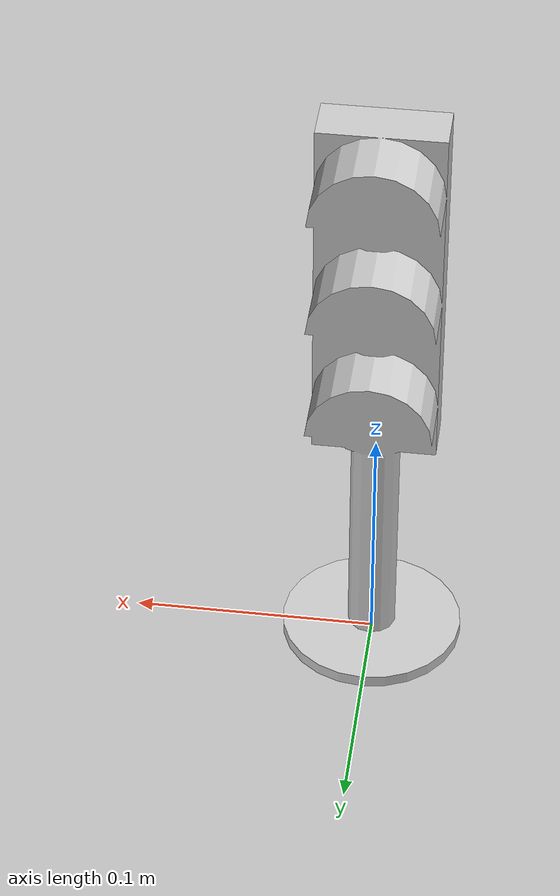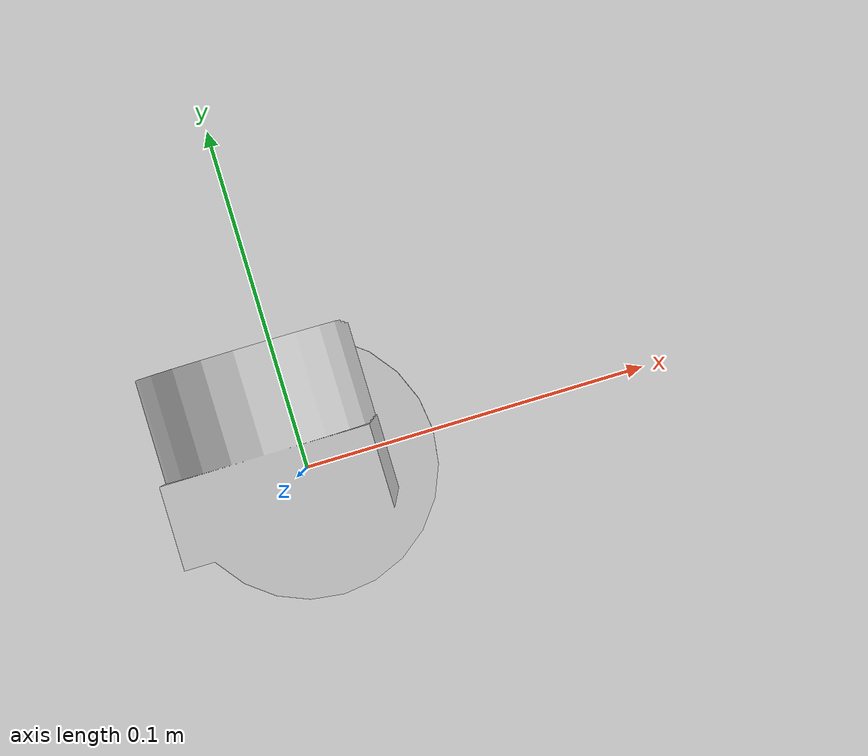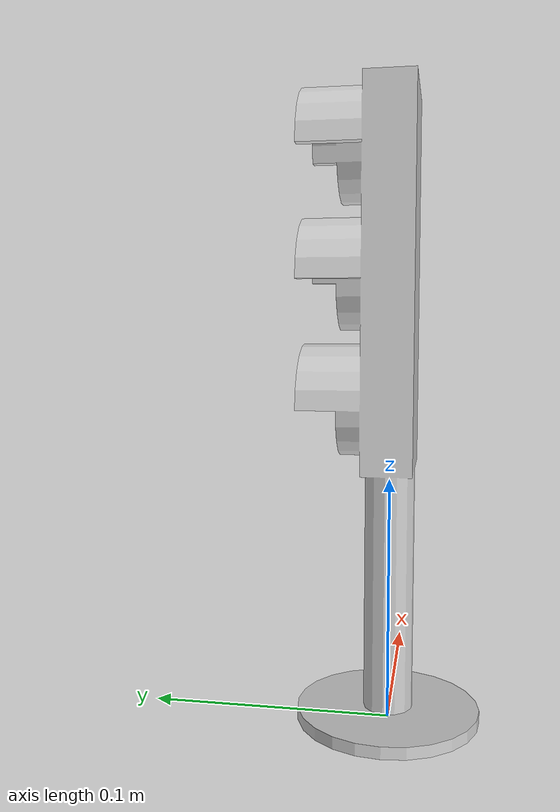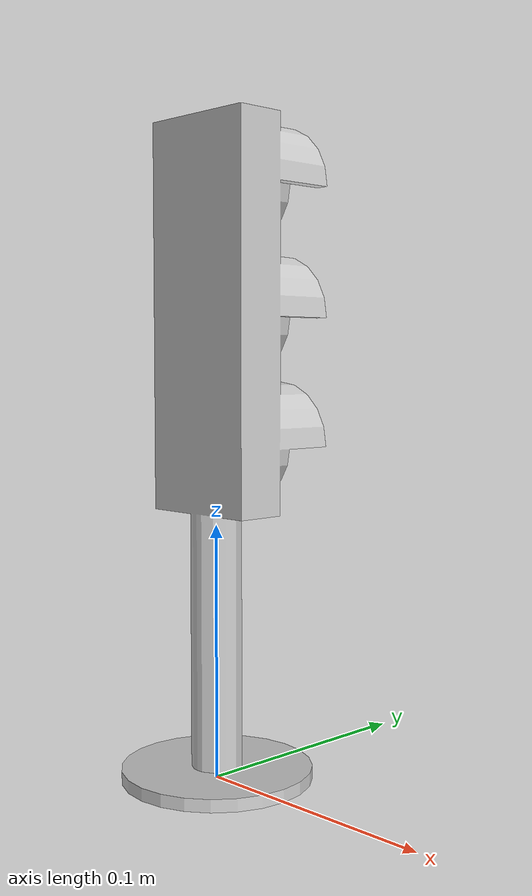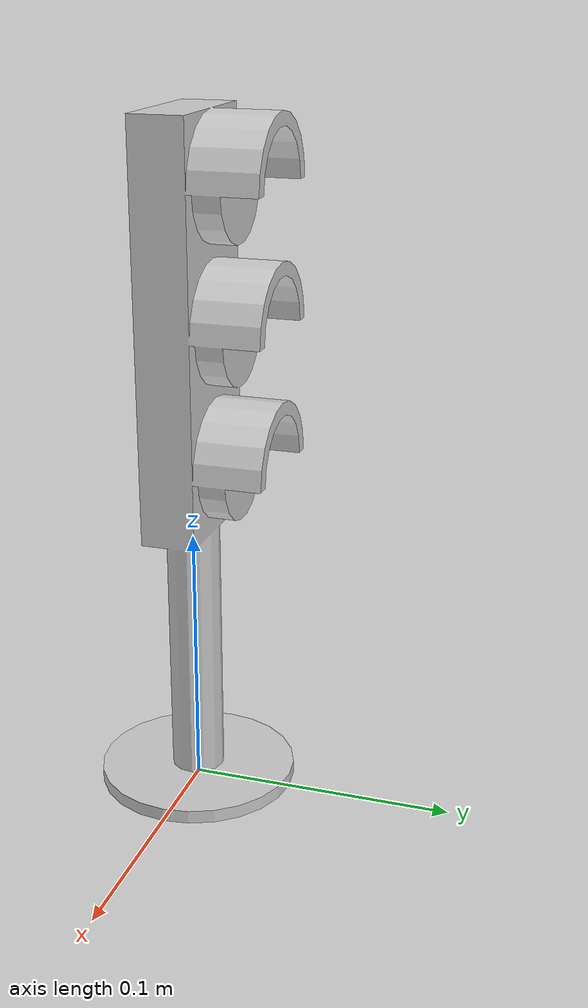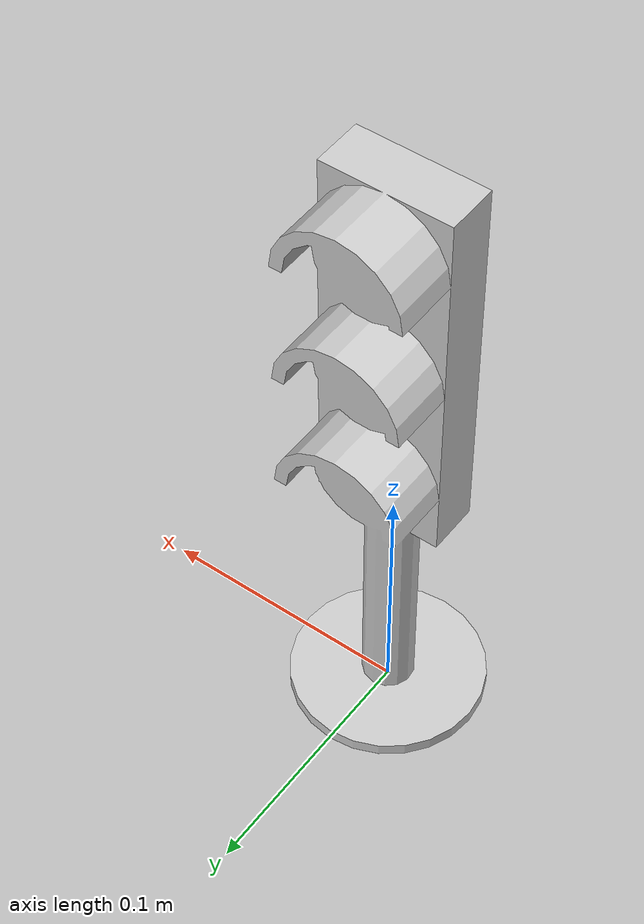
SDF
<sdf version='1.6'>
  <model name='roscar_semaforo.SLDPRT'>
    <link name='roscar_semaforo'>
      <pose frame=''>0 0 0 0 -0 0</pose>
      <inertial>
        <pose frame=''>0 0.00434 0.15211 0 -0 0</pose>
        <mass>0.26771</mass>
        <inertia>
          <ixx>0.0014357</ixx>
          <ixy>3.9059e-21</ixy>
          <ixz>-3.4596e-20</ixz>
          <iyy>0.001454</iyy>
          <iyz>4.0984e-05</iyz>
          <izz>8.2468e-05</izz>
        </inertia>
      </inertial>
      <collision name='roscar_semaforo_collision'>
        <pose frame=''>0 0 0 1.5708 -0 0</pose>
        <geometry>
          <mesh>
            <scale>1 1 1</scale>
            <uri>model://roscar_sem_amarillo/meshes/semaforo_amarillo.dae</uri>
          </mesh>
        </geometry>
      </collision>
      <visual name='roscar_semaforo_visual'>
        <pose frame=''>0 0 0 1.5708 -0 0</pose>
        <geometry>
          <mesh>
            <scale>1 1 1</scale>
            <uri>model://roscar_sem_amarillo/meshes/semaforo_amarillo.dae</uri>
          </mesh>
        </geometry>

				<material>
					<script>
            <uri>model://roscar_sem_amarillo/materials/scripts</uri>
            <uri>model://roscar_sem_amarillo/materials/textures</uri>
						<name>semaforo/Texture</name>
					</script>
				</material>

      </visual>
    </link>
  </model>
</sdf>
